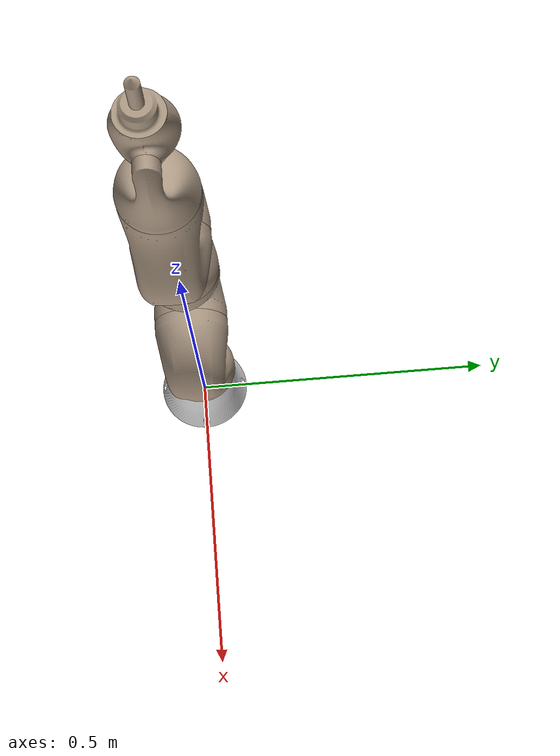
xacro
<?xml version="1.0"?>

<robot name="kuka_robot" xmlns:xacro="http://www.ros.org/wiki/xacro">

<xacro:include filename="$(find kuka_robot)/gazebo/kuka_robot_materials.gazebo" />
<xacro:include filename="$(find kuka_robot)/gazebo/kuka_robot_physics.gazebo" />
<xacro:include filename="$(find kuka_robot)/gazebo/kuka_robot_plugins.gazebo" />

  <material name="black">
    <color rgba="0.0 0.0 0.0 1.0"/>
  </material>
  <material name="orange">
    <color rgba="1.0 0.4 0.0 1.0"/>
  </material>

  <link name="world"/>
  <joint name="joint_w" type="fixed">
      <parent link="world"/>
      <child link="base_link"/>
  </joint>

  <link
    name="base_link">
    <inertial>
      <origin
        xyz="1.79063957104576E-07 1.67572848115813E-07 0.0455652610554416"
        rpy="0 0 0" />
      <mass
        value="1.28304057321319" />
      <inertia
        ixx="0.00243929811361957"
        ixy="-6.69773780277732E-09"
        ixz="1.30327760657331E-08"
        iyy="0.00243914161661202"
        iyz="-1.98358415946474E-09"
        izz="0.00271720853526469" />
    </inertial>
    <visual>
      <origin
        xyz="0 0 0"
        rpy="0 0 0" />
      <geometry>
        <mesh
          filename="package://kuka_robot/meshes/visual/base_link.STL" />
      </geometry>
      <material
        name="black">
        <color
          rgba="0.898039215686275 0.898039215686275 0.898039215686275 1" />
      </material>
    </visual>
    <collision>
      <origin
        xyz="0 0 0"
        rpy="0 0 0" />
      <geometry>
        <mesh
          filename="package://kuka_robot/meshes/collision/base_link.stl" />
      </geometry>
    </collision>
  </link>
  <link
    name="lower1_link">
    <inertial>
      <origin
        xyz="0.0174331004365116 -5.99764185868542E-05 0.087017892040276"
        rpy="0 0 0" />
      <mass
        value="1.07354479772155" />
      <inertia
        ixx="0.00244068573751809"
        ixy="9.30662734344186E-07"
        ixz="1.11099074026819E-05"
        iyy="0.00250180771402148"
        iyz="1.10140269966889E-06"
        izz="0.00107649611048839" />
    </inertial>
    <visual>
      <origin
        xyz="0 0 0"
        rpy="0 0 0" />
      <geometry>
        <mesh
          filename="package://kuka_robot/meshes/visual/lower1_link.STL" />
      </geometry>
      <material
        name="black">
        <color
          rgba="0.690196078431373 0.611764705882353 0.529411764705882 1" />
      </material>
    </visual>
    <collision>
      <origin
        xyz="0 0 0"
        rpy="0 0 0" />
      <geometry>
        <mesh
          filename="package://kuka_robot/meshes/collision/lower1_link.stl" />
      </geometry>
    </collision>
  </link>
  <joint
    name="lower1_joint"
    type="revolute">
    <origin
      xyz="0 0 0.12"
      rpy="0 0 0" />
    <parent
      link="base_link" />
    <child
      link="lower1_link" />
    <axis
      xyz="0 0 -1" />
    <limit
      lower="-6.2832"
      upper="6.2832"
      effort="30"
      velocity="17.436" />
  </joint>
  <link
    name="lower2_link">
    <inertial>
      <origin
        xyz="-0.035975 -6.2249E-05 0.069787"
        rpy="0 0 0" />
      <mass
        value="1.0343" />
      <inertia
        ixx="0.0024294"
        ixy="-9.3026E-07"
        ixz="1.1111E-05"
        iyy="0.0024915"
        iyz="-1.1007E-06"
        izz="0.0010652" />
    </inertial>
    <visual>
      <origin
        xyz="0 0 0"
        rpy="0 0 0" />
      <geometry>
        <mesh
          filename="package://kuka_robot/meshes/visual/lower2_link.STL" />
      </geometry>
      <material
        name="orange">
        <color
          rgba="0.6902 0.61176 0.52941 1" />
      </material>
    </visual>
    <collision>
      <origin
        xyz="0 0 0"
        rpy="0 0 0" />
      <geometry>
        <mesh
          filename="package://kuka_robot/meshes/collision/lower2_link.stl" />
      </geometry>
    </collision>
  </link>
  <joint
    name="lower2_joint"
    type="revolute">
    <origin
      xyz="-0.0225 0 0.1575"
      rpy="0 0 0" />
    <parent
      link="lower1_link" />
    <child
      link="lower2_link" />
    <axis
      xyz="-1 0 0" />
    <limit
      lower="-1.5708"
      upper="1.5708"
      effort="30"
      velocity="6.545" />
  </joint>
  <link
    name="upper1_link">
    <inertial>
      <origin
        xyz="-0.0174331019130241 5.99801616293706E-05 0.0870178878220682"
        rpy="0 0 0" />
      <mass
        value="1.0735453518097" />
      <inertia
        ixx="0.00244068580801946"
        ixy="9.30255309026512E-07"
        ixz="-1.11105912349513E-05"
        iyy="0.00250180701967206"
        iyz="-1.10088720657593E-06"
        izz="0.00107649557818183" />
    </inertial>
    <visual>
      <origin
        xyz="0 0 0"
        rpy="0 0 0" />
      <geometry>
        <mesh
          filename="package://kuka_robot/meshes/visual/upper1_link.STL" />
      </geometry>
      <material
        name="orange">
        <color
          rgba="0.690196078431373 0.611764705882353 0.529411764705882 1" />
      </material>
    </visual>
    <collision>
      <origin
        xyz="0 0 0"
        rpy="0 0 0" />
      <geometry>
        <mesh
          filename="package://kuka_robot/meshes/collision/upper1_link.stl" />
      </geometry>
    </collision>
  </link>
  <joint
    name="upper1_joint"
    type="revolute">
    <origin
      xyz="-0.0175 0 0.1975"
      rpy="0 0 0" />
    <parent
      link="lower2_link" />
    <child
      link="upper1_link" />
    <axis
      xyz="0 0 -1" />
    <limit
      lower="-6.2832"
      upper="6.2832"
      effort="30"
      velocity="6.545" />
  </joint>
  <link
    name="upper2_link">
    <inertial>
      <origin
        xyz="0.0359746974003218 6.22537230351066E-05 0.0697872824876592"
        rpy="0 0 0" />
      <mass
        value="1.03427543527388" />
      <inertia
        ixx="0.00242939370427471"
        ixy="-9.30256106703281E-07"
        ixz="-1.111055467359E-05"
        iyy="0.00249149448285047"
        iyz="1.10083904881362E-06"
        izz="0.00106520333340543" />
    </inertial>
    <visual>
      <origin
        xyz="0 0 0"
        rpy="0 0 0" />
      <geometry>
        <mesh
          filename="package://kuka_robot/meshes/visual/upper2_link.STL" />
      </geometry>
      <material
        name="black">
        <color
          rgba="0.690196078431373 0.611764705882353 0.529411764705882 1" />
      </material>
    </visual>
    <collision>
      <origin
        xyz="0 0 0"
        rpy="0 0 0" />
      <geometry>
        <mesh
          filename="package://kuka_robot/meshes/collision/upper2_link.stl" />
      </geometry>
    </collision>
  </link>
  <joint
    name="upper2_joint"
    type="revolute">
    <origin
      xyz="0.0225 0 0.1575"
      rpy="0 0 0" />
    <parent
      link="upper1_link" />
    <child
      link="upper2_link" />
    <axis
      xyz="1 0 0" />
    <limit
      lower="-2.3562"
      upper="2.3562"
      effort="30"
      velocity="6.545" />
  </joint>
  <link
    name="top_link">
    <inertial>
      <origin
        xyz="0.0127923259892452 -1.22225312032995E-06 0.0357599837468831"
        rpy="0 0 0" />
      <mass
        value="0.253283687997405" />
      <inertia
        ixx="0.000292417828240087"
        ixy="-1.43077437091592E-08"
        ixz="-8.63612197923442E-05"
        iyy="0.00041545832790866"
        iyz="-5.0332513868308E-09"
        izz="0.000389340874992559" />
    </inertial>
    <visual>
      <origin
        xyz="0 0 0"
        rpy="0 0 0" />
      <geometry>
        <mesh
          filename="package://kuka_robot/meshes/visual/top_link.STL" />
      </geometry>
      <material
        name="orange">
        <color
          rgba="0.690196078431373 0.611764705882353 0.529411764705882 1" />
      </material>
    </visual>
    <collision>
      <origin
        xyz="0 0 0"
        rpy="0 0 0" />
      <geometry>
        <mesh
          filename="package://kuka_robot/meshes/collision/top_link.stl" />
      </geometry>
    </collision>
  </link>
  <joint
    name="top_joint"
    type="revolute">
    <origin
      xyz="0.0175 0 0.1875"
      rpy="0 0 0" />
    <parent
      link="upper2_link" />
    <child
      link="top_link" />
    <axis
      xyz="0 0 -1" />
    <limit
      lower="-6.2832"
      upper="6.2832"
      effort="30"
      velocity="6.545" />
  </joint>
  <link
    name="end_effector_link">
    <inertial>
      <origin
        xyz="-0.042834 2.151E-07 0.027882"
        rpy="0 0 0" />
      <mass
        value="0.24233" />
      <inertia
        ixx="0.00021015"
        ixy="1.2933E-09"
        ixz="1.3983E-05"
        iyy="0.00024828"
        iyz="1.0496E-09"
        izz="0.00011469" />
    </inertial>
    <visual>
      <origin
        xyz="0 0 0"
        rpy="0 0 0" />
      <geometry>
        <mesh
          filename="package://kuka_robot/meshes/visual/end_effector_link.STL" />
      </geometry>
      <material
        name="black">
        <color
          rgba="0.6902 0.61176 0.52941 1" />
      </material>
    </visual>
    <collision>
      <origin
        xyz="0 0 0"
        rpy="0 0 0" />
      <geometry>
        <mesh
          filename="package://kuka_robot/meshes/collision/end_effector_link.stl" />
      </geometry>
    </collision>
  </link>
  <joint
    name="end_effector_joint"
    type="revolute">
    <origin
      xyz="0.0312 0 0.15"
      rpy="0 0 0" />
    <parent
      link="top_link" />
    <child
      link="end_effector_link" />
    <axis
      xyz="1 0 0" />
    <limit
      lower="-2.3562"
      upper="2.3562"
      effort="30"
      velocity="6.545" />
  </joint>

</robot>

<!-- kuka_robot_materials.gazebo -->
<robot name="kuka_robot" xmlns:xacro="http://www.ros.org/wiki/xacro">

<xacro:property name = "base_color" value = "Gazebo/Black"/>
<xacro:property name = "body_color" value = "Gazebo/Turquoise "/>
<xacro:property name = "body_color_2" value = "Gazebo/Turquoise"/>
<xacro:property name = "end_effector_color" value = "Gazebo/ZincYellow"/>

<gazebo reference = "base_link">
    <material>${base_color}</material>
</gazebo>

<gazebo reference = "lower1_link">
    <material>${body_color}</material>
</gazebo>

<gazebo reference = "lower2_link">
    <material>${body_color_2}</material>
</gazebo>

<gazebo reference = "upper1_link">
    <material>${body_color}</material>
</gazebo>

<gazebo reference = "upper2_link">
    <material>${body_color_2}</material>
</gazebo>

<gazebo reference = "top_link">
    <material>${body_color}</material>
</gazebo>

<gazebo reference = "end_effector_link">
    <material>${end_effector_color}</material>
</gazebo>

</robot>
